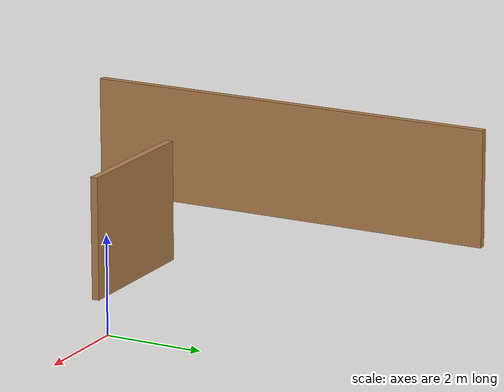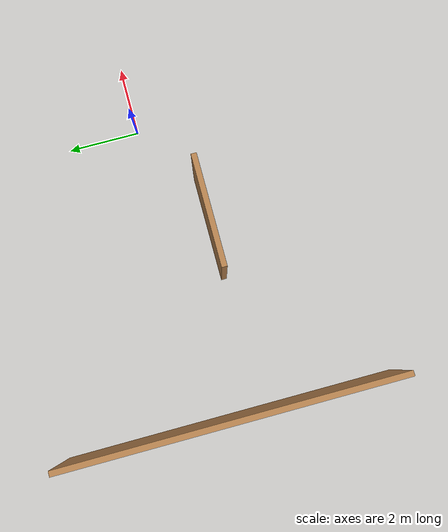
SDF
<sdf version="1.7">
 <model name="mundo_normal1">
  <pose>-1.83298 -2.00796 0 0 -0 0</pose>
  <link name="Wall_10">
   <collision name="Wall_10_Collision">
    <geometry><box><size>3 0.15 2.5</size></box></geometry>
    <pose>0 0 1.25 0 -0 0</pose>
   </collision>
   <visual name="Wall_10_Visual">
    <pose>0 0 1.25 0 -0 0</pose>
    <geometry><box><size>3 0.15 2.5</size></box></geometry>
    <material>
     <script><uri>file://media/materials/scripts/gazebo.material</uri><name>Gazebo/Wood</name></script>
     <ambient>1 1 1 1</ambient>
    </material>
    <meta><layer>0</layer></meta>
   </visual>
   <pose>-1.425 0.7 0 0 -0 3.14159</pose>
  </link>
  <link name="Wall_8">
   <collision name="Wall_8_Collision">
    <geometry><box><size>9 0.15 2.5</size></box></geometry>
    <pose>0 0 1.25 0 -0 0</pose>
   </collision>
   <visual name="Wall_8_Visual">
    <pose>0 0 1.25 0 -0 0</pose>
    <geometry><box><size>9 0.15 2.5</size></box></geometry>
    <material>
     <script><uri>file://media/materials/scripts/gazebo.material</uri><name>Gazebo/Wood</name></script>
     <ambient>1 1 1 1</ambient>
    </material>
    <meta><layer>0</layer></meta>
   </visual>
   <pose>-6.6 1.475 0 0 -0 1.5708</pose>
  </link>
  <static>1</static>
 </model>
</sdf>
